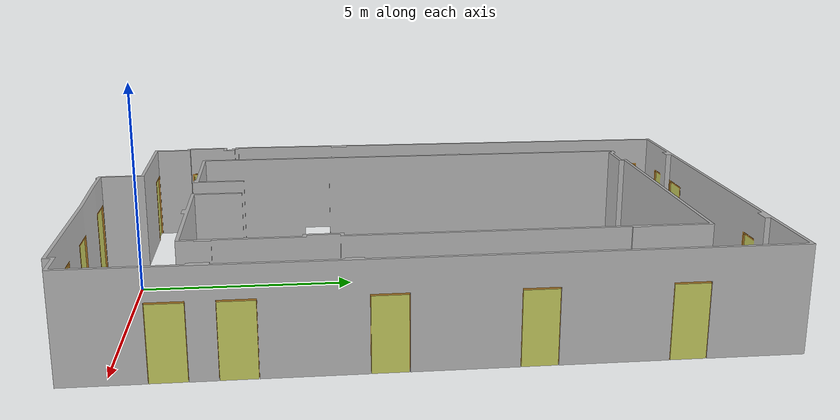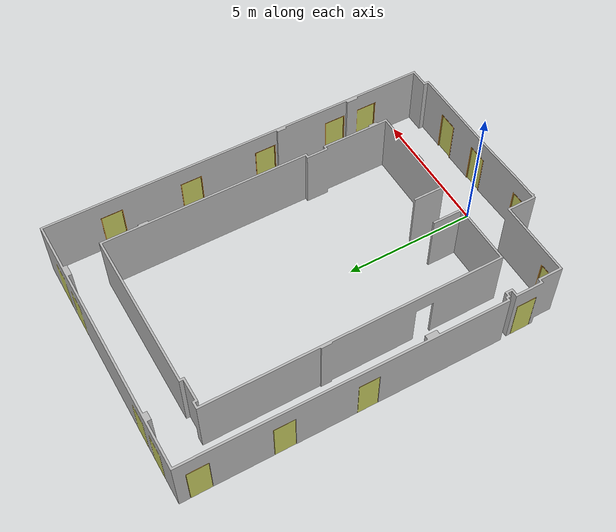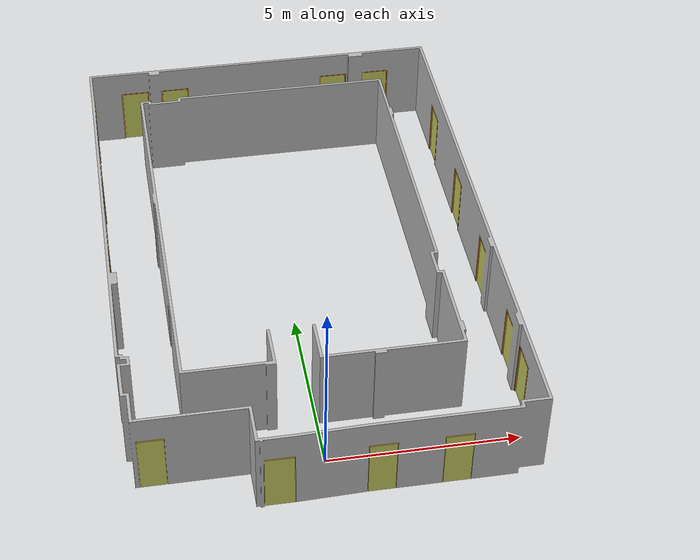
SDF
<?xml version="1.0" ?>
<sdf version="1.0">
  <model name="ctvii">
    <static>true</static>
    <pose>0 0 0 0 0 0</pose>
    <link name="walls">
      <collision name="collision">
        <geometry>
          <mesh>
            <uri>model://CT7/meshes/wall_collision.dae</uri>
          </mesh>
        </geometry>
      </collision>
      <visual name="visual">
        <geometry>
          <mesh>
            <uri>model://CT7/meshes/ct.dae</uri>
          </mesh>
        </geometry>
        <cast_shadows>false</cast_shadows>
      </visual>
    </link>
  </model>
</sdf>
